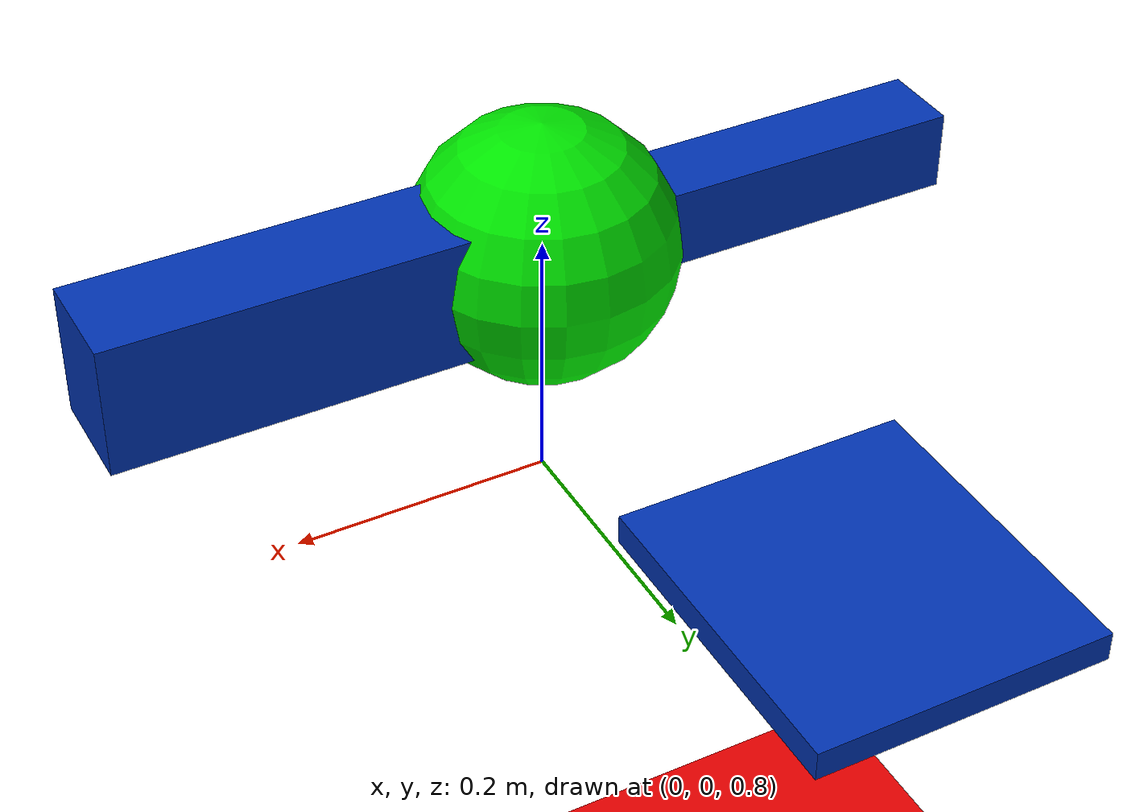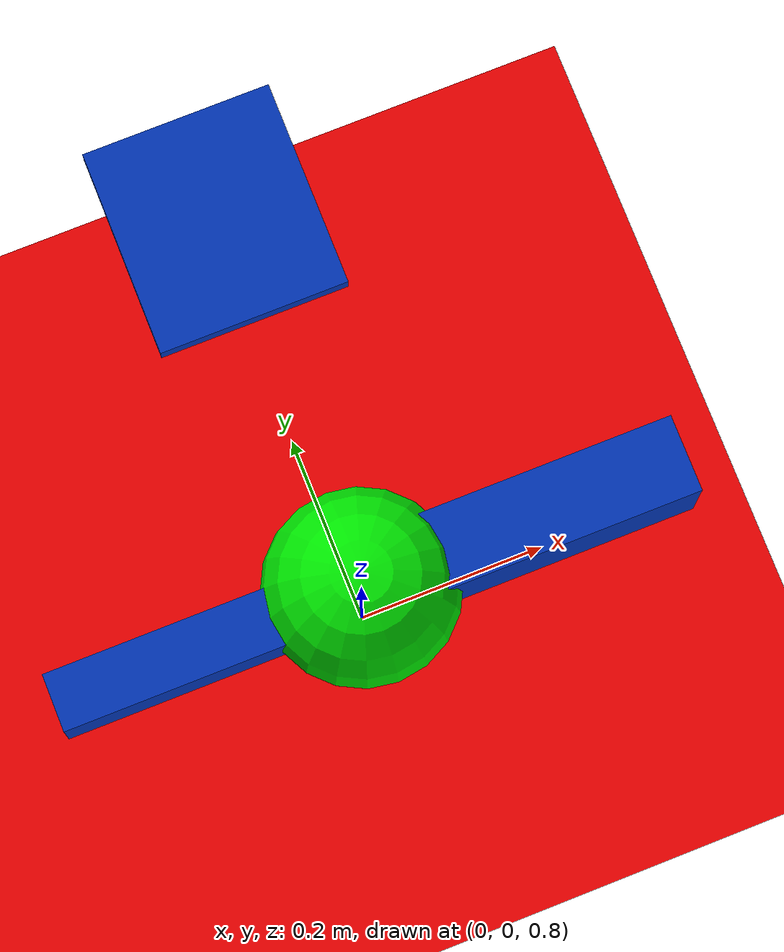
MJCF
<mujoco>
    <option gravity="0 0 0"/>
    <worldbody>
        <light diffuse=".5 .5 .5" pos="0 0 5" dir="0 0 -1"/>
        <geom type="plane" size="10 10 0.1" rgba=".9 0 0 1"/>

        <body name="fish" pos="0 0 1" euler="0 0 0">
            <joint type="free" axis="0 0 0" pos="0 0 0" />
            <body name="body" pos="0 0 0" euler="0 0 0">
                <geom type="sphere" size="0.1" rgba="0 .9 0 1" mass="0.03742" />
            </body>

            <body name="fin1" pos=".2 0 0" euler="0 -90 0">
                <joint name="joint1" type="hinge" axis="1 0 0" pos="0 0 .25" range="-45 45" />
                <geom type="box" size="0.05 0.04 0.14" rgba="0 0.2 0.7 1" mass="0.56756" />
            </body>

            <body name="fin2" pos="-.2 0 0" euler="0 90 0">
                <joint name="joint2" type="hinge" axis="1 0 0" pos="0 0 .25" range="-45 45" />
                <geom type="box" size="0.03 0.03 0.12" rgba="0 0.2 0.7 1" mass="0.18749" />
            </body>

            <body name="tail" pos="0 0.4 0" euler="0 90 90">
                <joint name="joint3" type="hinge" axis="0 0 1" pos="0 0 0" range="-45 45" />
                <geom type="box" size="0.11 0.01 0.10" rgba="0 0.2 0.7 1" mass="0.24034" />
            </body>
        </body>
    </worldbody>

    <actuator>
        <motor joint="joint1" name="t1" gear="10" ctrllimited="true" ctrlrange="-5 5" />
        <motor joint="joint2" name="t2" gear="10" ctrllimited="true" ctrlrange="-5 5" />
        <motor joint="joint3" name="t3" gear="10" ctrllimited="true" ctrlrange="-5 5" />
    </actuator>
</mujoco>
